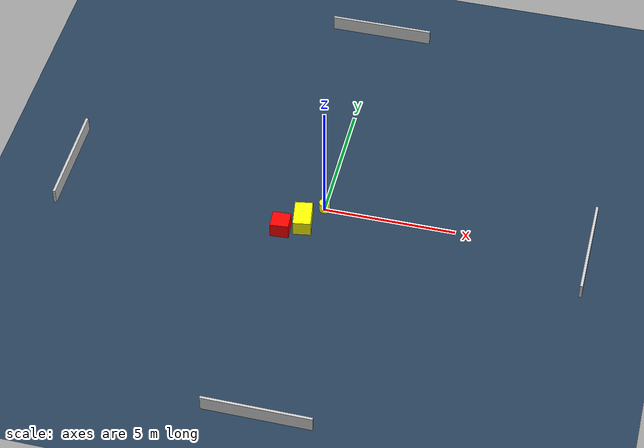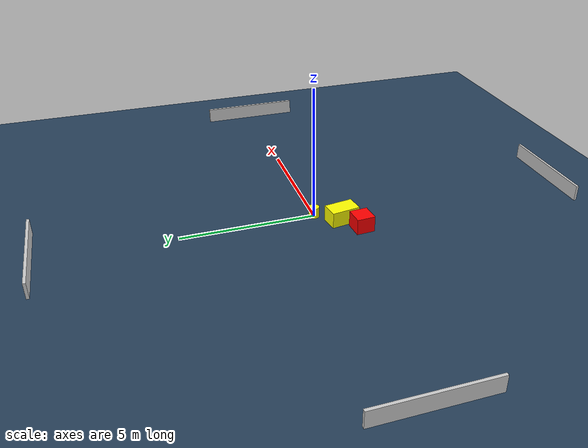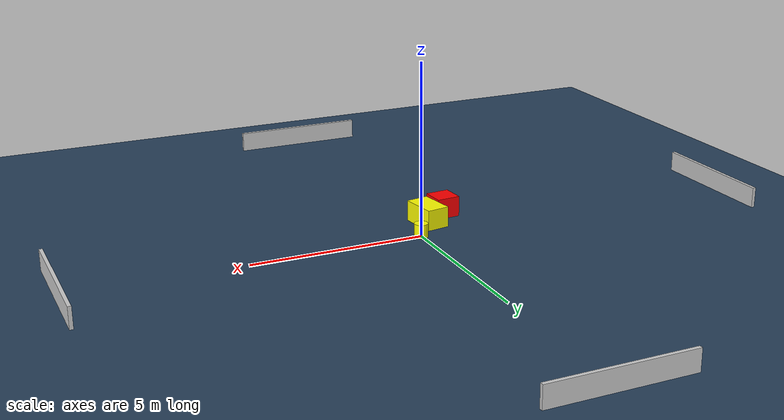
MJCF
<?xml version="1.0" ?>
<mujoco model="generated_environment">
  <option timestep="0.01" integrator="RK4" cone="elliptic"/>
  <default>
    <geom density="1"/>
  </default>
  <asset>
    <texture builtin="gradient" height="3072" name="skybox" rgb1="0.3 0.5 0.7" rgb2="0 0 0" type="skybox" width="512"/>
    <texture builtin="checker" height="300" name="groundplane" rgb1="0.2 0.3 0.4" rgb2="0.1 0.2 0.3" type="2d" width="300"/>
    <material name="groundplane" reflectance="0.2" texrepeat="5 5" texture="groundplane"/>
  </asset>
  <worldbody>
    <light dir="0 0 -1" directional="true" pos="0 0 1.5"/>
    <geom condim="3" friction="0.5 0.005 0.001" material="groundplane" name="floor" pos="0 0 0" size="0 0 0.05" type="plane"/>
    <body name="walls">
      <geom name="wall_1" condim="4" pos="-10.0 0.0 0.3" rgba="0.800000011920929 0.800000011920929 0.800000011920929 1.0" size="0.05 2.0 0.3" type="box"/>
      <geom name="wall_2" condim="4" pos="10.0 0.0 0.3" rgba="0.800000011920929 0.800000011920929 0.800000011920929 1.0" size="0.05 2.0 0.3" type="box"/>
      <geom name="wall_3" condim="4" pos="0.0 -10.0 0.3" rgba="0.800000011920929 0.800000011920929 0.800000011920929 1.0" size="2.0 0.05 0.3" type="box"/>
      <geom name="wall_4" condim="4" pos="0.0 10.0 0.3" rgba="0.800000011920929 0.800000011920929 0.800000011920929 1.0" size="2.0 0.05 0.3" type="box"/>
    </body>
    <body name="robot">
      <joint name="joint_x" type="slide" pos="0 0 0" axis="1 0 0"/>
      <joint name="joint_y" type="slide" pos="0 0 0" axis="0 1 0"/>
      <geom name="robot" type="cylinder" pos="0.0 0.0 0.2" size="0.2 0.2 0.0" mass="5.0" friction="1.0 0.005 0.0001" condim="4" rgba="1.0 1.0 0.0 1.0"/>
    </body>
    <body name="obstacle_1_movable">
      <geom name="obstacle_1_movable" condim="4" pos="-0.6224421915818423 -0.8823156552031018 0.3" euler="0 0 99.04228461988427" friction="0.0 0.005 0.001" rgba="1.0 1.0 0.0 1.0" size="0.5428857214624616 0.3343795140291099 0.3" type="box" mass="0.1"/>
      <joint type="free"/>
    </body>
    <body name="obstacle_2_static">
      <geom name="obstacle_2_static" condim="4" pos="-1.352891693465314 -1.3828894246894772 0.3" euler="0 0 184.14263846138073" friction="0.0 0.005 0.001" rgba="1.0 0.0 0.0 1.0" size="0.34773680962653275 0.3415246001592822 0.3" type="box"/>
    </body>
  </worldbody>
  <actuator>
    <motor name="actuator_x" joint="joint_x" gear="1" ctrlrange="-1 1"/>
    <motor name="actuator_y" joint="joint_y" gear="1" ctrlrange="-1 1"/>
  </actuator>
</mujoco>
